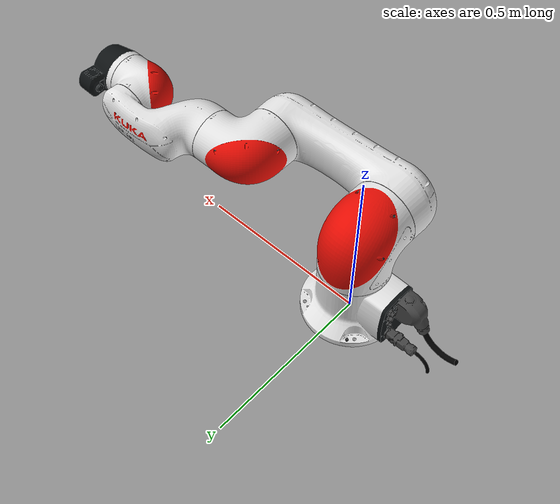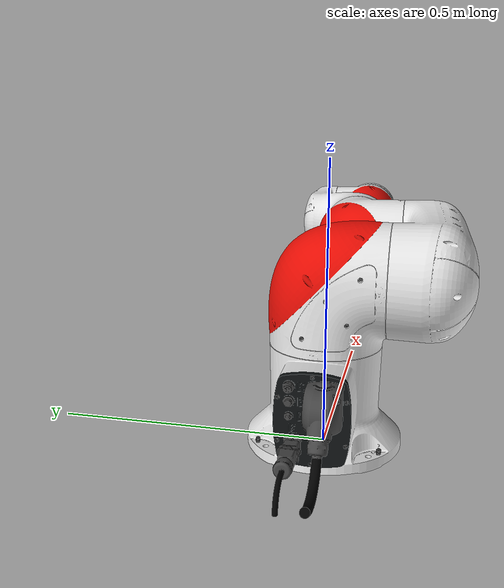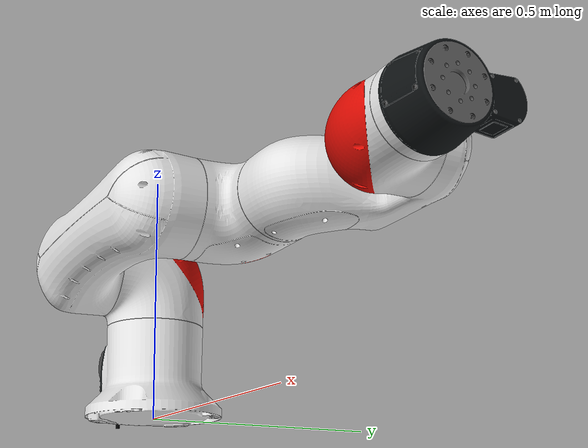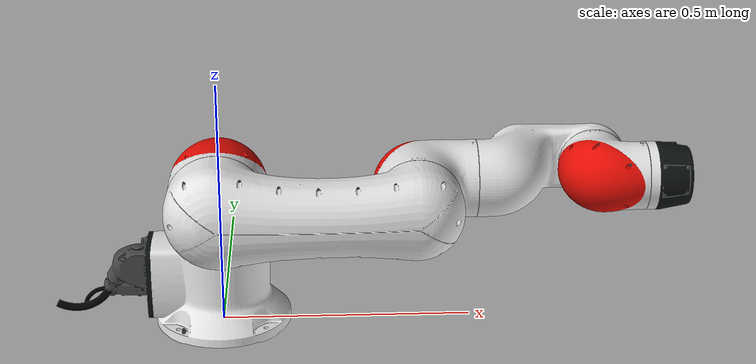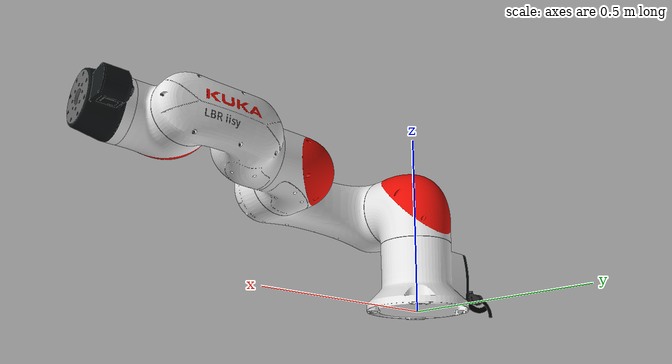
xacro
<?xml version="1.0" encoding="UTF-8"?>
<robot xmlns:xacro="http://www.ros.org/wiki/xacro" name="lbr_iisy8_r930">
  <!-- Import urdf files  -->
  <xacro:include filename="$(find kuka_lbr_iisy_support)/urdf/lbr_iisy8_r930_macro.xacro"/>
  <xacro:include filename="$(find kuka_lbr_iisy_support)/urdf/lbr_iisy_ros2_control_macro.xacro"/>
  <!-- Basic arguments  -->
  <xacro:arg name="prefix" default=""/>
  <xacro:arg name="is_async" default="false"/>
  <xacro:arg name="async_thread_priority" default="69"/>
  <xacro:arg name="async_affinity" default="[]"/>
  <xacro:arg name="x" default="0"/>
  <xacro:arg name="y" default="0"/>
  <xacro:arg name="z" default="0"/>
  <xacro:arg name="roll" default="0"/>
  <xacro:arg name="pitch" default="0"/>
  <xacro:arg name="yaw" default="0"/>
  <!-- kroshu-specific arguments -->
  <xacro:arg name="driver_version" default="rsi_only"/>
  <xacro:arg name="mode" default="hardware"/>
  <xacro:arg name="use_gpio" default="false"/>
  <xacro:arg name="roundtrip_time" default="0"/>
  <xacro:arg name="client_ip" default="0.0.0.0"/>
  <xacro:arg name="client_port" default="59152"/>
  <xacro:arg name="mxa_client_port" default="1337"/>
  <xacro:arg name="controller_ip" default="0.0.0.0"/>
  <xacro:arg name="verify_robot_model" default="true"/>
  <xacro:arg name="joint_stiffness" default="[]"/>
  <xacro:arg name="joint_damping" default="[]"/>
  <xacro:arg name="qos_config_file" default=""/>
  <xacro:arg name="rsi_xml_config_file" default=""/>
  <xacro:kuka_lbr_iisy_ros2_control name="$(arg prefix)lbr_iisy8_r930" driver_version="$(arg driver_version)" client_ip="$(arg client_ip)" client_port="$(arg client_port)" mxa_client_port="$(arg mxa_client_port)" controller_ip="$(arg controller_ip)" prefix="$(arg prefix)" mode="$(arg mode)" use_gpio="$(arg use_gpio)" roundtrip_time="$(arg roundtrip_time)" verify_robot_model="$(arg verify_robot_model)" qos_config_file="$(arg qos_config_file)" rsi_xml_config_file="$(arg rsi_xml_config_file)" is_async="$(arg is_async)" async_thread_priority="$(arg async_thread_priority)" async_affinity="$(arg async_affinity)" joint_stiffness="$(arg joint_stiffness)" joint_damping="$(arg joint_damping)">
    <ext_axes_ros2_control_joints/>
  </xacro:kuka_lbr_iisy_ros2_control>
  <!-- world link -->
  <link name="world"/>
  <!-- robot links, joints -->
  <xacro:kuka_lbr_iisy8_r930_robot prefix="$(arg prefix)" package_name="kuka_lbr_iisy_support"/>
  <!-- default world - base_link joint -->
  <joint name="$(arg prefix)world-base_link" type="fixed">
    <parent link="world"/>
    <child link="$(arg prefix)base_link"/>
    <origin xyz="$(arg x) $(arg y) $(arg z)" rpy="$(arg roll) $(arg pitch) $(arg yaw)"/>
  </joint>
</robot>

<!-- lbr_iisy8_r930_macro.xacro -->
<robot xmlns:xacro="http://www.ros.org/wiki/xacro" name="lbr_iisy8_r930">
  <xacro:macro name="kuka_lbr_iisy8_r930_robot" params="prefix package_name">
    <link name="${prefix}base"/>
    <link name="${prefix}base_link">
      <collision>
        <geometry>
          <mesh filename="package://${package_name}/meshes/lbr_iisy8_r930/collision/base_link.stl"/>
        </geometry>
        <origin rpy="0.0 0.0 0.0" xyz="0.0 0.0 0.0"/>
      </collision>
      <inertial>
        <inertia ixx="0.047760713347220284" ixy="0.0" ixz="0.0" iyy="0.04301965825375381" iyz="0.0" izz="0.055968928085144955"/>
        <mass value="8.666"/>
        <origin rpy="1.5585014795156402 -1.147346167656539 0.01734965625456989" xyz="-0.013691160858527576 -0.0002552942534041079 0.09925006577429032"/>
      </inertial>
      <visual>
        <geometry>
          <mesh filename="package://${package_name}/meshes/lbr_iisy8_r930/visual/base_link.dae"/>
        </geometry>
        <origin rpy="0.0 0.0 0.0" xyz="0.0 0.0 0.0"/>
      </visual>
    </link>
    <link name="${prefix}flange"/>
    <link name="${prefix}link_1">
      <collision>
        <geometry>
          <mesh filename="package://${package_name}/meshes/lbr_iisy8_r930/collision/link_1.stl"/>
        </geometry>
        <origin rpy="-3.141592653589793 0.0 -0.0" xyz="0.0 -2.2594733444268666e-17 0.1845"/>
      </collision>
      <inertial>
        <inertia ixx="0.04891080390225027" ixy="0.0" ixz="0.0" iyy="0.03837059354008793" iyz="0.0" izz="0.05221216427699114"/>
        <mass value="9.62"/>
        <origin rpy="-1.3035636348359214 -0.781578105355474 1.2529437882898207" xyz="0.0034430103950103897 0.0191980353430353 -0.08662803846153849"/>
      </inertial>
      <visual>
        <geometry>
          <mesh filename="package://${package_name}/meshes/lbr_iisy8_r930/visual/link_1.dae"/>
        </geometry>
        <origin rpy="-3.141592653589793 0.0 -0.0" xyz="0.0 -2.2594733444268666e-17 0.1845"/>
      </visual>
    </link>
    <link name="${prefix}link_2">
      <collision>
        <geometry>
          <mesh filename="package://${package_name}/meshes/lbr_iisy8_r930/collision/link_2.stl"/>
        </geometry>
        <origin rpy="1.5707963267948968 -0.0 1.5707963267948966" xyz="-0.30000000000000004 1.83697019872103e-17 0.10110000000000005"/>
      </collision>
      <inertial>
        <inertia ixx="0.030616862725313537" ixy="0.0" ixz="0.0" iyy="0.25204709374543116" iyz="0.0" izz="0.2586503626094612"/>
        <mass value="7.70747896240714"/>
        <origin rpy="-0.017400716172763595 0.00012184236596039882 0.0007609596915052641" xyz="0.14402422518153302 0.00231163059312188 -0.0483197442942268"/>
      </inertial>
      <visual>
        <geometry>
          <mesh filename="package://${package_name}/meshes/lbr_iisy8_r930/visual/link_2.dae"/>
        </geometry>
        <origin rpy="1.5707963267948968 -0.0 1.5707963267948966" xyz="-0.30000000000000004 1.83697019872103e-17 0.10110000000000005"/>
      </visual>
    </link>
    <link name="${prefix}link_3">
      <collision>
        <geometry>
          <mesh filename="package://${package_name}/meshes/lbr_iisy8_r930/collision/link_3.stl"/>
        </geometry>
        <origin rpy="1.5707963267948968 -0.0 -0.0" xyz="-2.357445088358655e-17 0.685 0.07740000000000005"/>
      </collision>
      <inertial>
        <inertia ixx="0.0181557035426496" ixy="0.0" ixz="0.0" iyy="0.034691639167683724" iyz="0.0" izz="0.03777695124245804"/>
        <mass value="7.4886271849515"/>
        <origin rpy="0.1692981167548122 0.5271433699021744 -2.960580671435747" xyz="0.0270956445406936 -0.0021218704432894803 0.0624636098932979"/>
      </inertial>
      <visual>
        <geometry>
          <mesh filename="package://${package_name}/meshes/lbr_iisy8_r930/visual/link_3.dae"/>
        </geometry>
        <origin rpy="1.5707963267948968 -0.0 -0.0" xyz="-2.357445088358655e-17 0.685 0.07740000000000005"/>
      </visual>
    </link>
    <link name="${prefix}link_4">
      <collision>
        <geometry>
          <mesh filename="package://${package_name}/meshes/lbr_iisy8_r930/collision/link_4.stl"/>
        </geometry>
        <origin rpy="1.8369701987210297e-16 1.5707963267948966 0.0" xyz="-0.685 2.980894717829243e-17 0.11389999999999999"/>
      </collision>
      <inertial>
        <inertia ixx="0.020877159330427716" ixy="0.0" ixz="0.0" iyy="0.05261356982074548" iyz="0.0" izz="0.05874858836818021"/>
        <mass value="5.6008287765519"/>
        <origin rpy="1.5351669996012838 -1.2065715961818435 -1.5128639031666171" xyz="0.00445827800341446 0.0493059571659004 -0.11984168613493"/>
      </inertial>
      <visual>
        <geometry>
          <mesh filename="package://${package_name}/meshes/lbr_iisy8_r930/visual/link_4.dae"/>
        </geometry>
        <origin rpy="1.8369701987210297e-16 1.5707963267948966 0.0" xyz="-0.685 2.980894717829243e-17 0.11389999999999999"/>
      </visual>
    </link>
    <link name="${prefix}link_5">
      <collision>
        <geometry>
          <mesh filename="package://${package_name}/meshes/lbr_iisy8_r930/collision/link_5.stl"/>
        </geometry>
        <origin rpy="1.5707963267948968 -3.749399456654644e-33 -6.123233995736766e-17" xyz="-0.36699999999999994 0.685 -0.05069999999999999"/>
      </collision>
      <inertial>
        <inertia ixx="0.0066728807212325415" ixy="0.0" ixz="0.0" iyy="0.005035431681484804" iyz="0.0" izz="0.00841044585602456"/>
        <mass value="2.50250072454558"/>
        <origin rpy="0.425620352875551 0.14544264795709005 1.2195648324165664" xyz="0.0297630455622369 -0.00461140295652028 -0.0385230456336678"/>
      </inertial>
      <visual>
        <geometry>
          <mesh filename="package://${package_name}/meshes/lbr_iisy8_r930/visual/link_5.dae"/>
        </geometry>
        <origin rpy="1.5707963267948968 -3.749399456654644e-33 -6.123233995736766e-17" xyz="-0.36699999999999994 0.685 -0.05069999999999999"/>
      </visual>
    </link>
    <link name="${prefix}link_6">
      <collision>
        <geometry>
          <mesh filename="package://${package_name}/meshes/lbr_iisy8_r930/collision/link_6.stl"/>
        </geometry>
        <origin rpy="1.2246467991473532e-16 1.5707963267948966 0.0" xyz="-0.685 -1.8880469982331386e-17 0.4506999999999999"/>
      </collision>
      <inertial>
        <inertia ixx="0.003902740366548234" ixy="0.0" ixz="0.0" iyy="0.002869308875211525" iyz="0.0" izz="0.004035124132983483"/>
        <mass value="1.5066041138632"/>
        <origin rpy="-0.05193633587509675 -0.12965235297957348 -0.0038347791577381402" xyz="-0.0179504010059083 0.019497341284540302 -0.0304582307013539"/>
      </inertial>
      <visual>
        <geometry>
          <mesh filename="package://${package_name}/meshes/lbr_iisy8_r930/visual/link_6.dae"/>
        </geometry>
        <origin rpy="1.2246467991473532e-16 1.5707963267948966 0.0" xyz="-0.685 -1.8880469982331386e-17 0.4506999999999999"/>
      </visual>
    </link>
    <link name="${prefix}tool0"/>
    <joint name="${prefix}base_link-base" type="fixed">
      <child link="${prefix}base"/>
      <origin rpy="0.0 0.0 0.0" xyz="0.0 0.0 0.0"/>
      <parent link="${prefix}base_link"/>
    </joint>
    <joint name="${prefix}joint_1" type="revolute">
      <axis xyz="0.0 0.0 1.0"/>
      <child link="${prefix}link_1"/>
      <limit effort="398.01127748173354" lower="-3.2288591161895095" upper="3.2288591161895095" velocity="3.490658503988659"/>
      <origin rpy="3.141592653589793 0.0 0.0" xyz="0.0 0.0 0.1845"/>
      <parent link="${prefix}base_link"/>
    </joint>
    <joint name="${prefix}joint_2" type="revolute">
      <axis xyz="0.0 0.0 1.0"/>
      <child link="${prefix}link_2"/>
      <limit effort="286.529873080262" lower="-4.014257279586958" upper="0.8726646259971648" velocity="3.490658503988659"/>
      <origin rpy="1.5707963267948966 0.0 0.0" xyz="0.0 0.10110000000000001 -0.1155"/>
      <parent link="${prefix}link_1"/>
    </joint>
    <joint name="${prefix}joint_3" type="revolute">
      <axis xyz="0.0 0.0 1.0"/>
      <child link="${prefix}link_3"/>
      <limit effort="137.666701140602" lower="-2.6179938779914944" upper="2.6179938779914944" velocity="3.490658503988659"/>
      <origin rpy="0.0 0.0 0.0" xyz="0.385 0.0 0.0237"/>
      <parent link="${prefix}link_2"/>
    </joint>
    <joint name="${prefix}joint_4" type="revolute">
      <axis xyz="0.0 0.0 1.0"/>
      <child link="${prefix}link_4"/>
      <limit effort="63.5742376209283" lower="-3.141592653589793" upper="3.141592653589793" velocity="4.014257279586958"/>
      <origin rpy="1.5707963267948966 0.0 -1.5707963267948966" xyz="0.1139 0.0 0.07740000000000001"/>
      <parent link="${prefix}link_3"/>
    </joint>
    <joint name="${prefix}joint_5" type="revolute">
      <axis xyz="0.0 0.0 1.0"/>
      <child link="${prefix}link_5"/>
      <limit effort="58.5802975910498" lower="-1.9198621771937625" upper="1.9198621771937625" velocity="4.537856055185257"/>
      <origin rpy="0.0 1.5707963267948966 1.5707963267948966" xyz="0.0 0.050699999999999995 -0.2531"/>
      <parent link="${prefix}link_4"/>
    </joint>
    <joint name="${prefix}joint_6" type="revolute">
      <axis xyz="0.0 0.0 1.0"/>
      <child link="${prefix}link_6"/>
      <limit effort="15.9275678542121" lower="-3.839724354387525" upper="3.839724354387525" velocity="7.504915783575617"/>
      <origin rpy="1.5707963267948966 0.0 -1.5707963267948966" xyz="0.0837 0.0 -0.050699999999999995"/>
      <parent link="${prefix}link_5"/>
    </joint>
    <joint name="${prefix}link_6-flange" type="fixed">
      <child link="${prefix}flange"/>
      <origin rpy="0.0 1.5707963267948966 0.0" xyz="0.0 0.0 -0.0943"/>
      <parent link="${prefix}link_6"/>
    </joint>
    <joint name="${prefix}link_6-tool0" type="fixed">
      <child link="${prefix}tool0"/>
      <origin rpy="3.141592653589793 0.0 3.141592653589793" xyz="0.0 0.0 -0.0943"/>
      <parent link="${prefix}link_6"/>
    </joint>
  </xacro:macro>
</robot>
